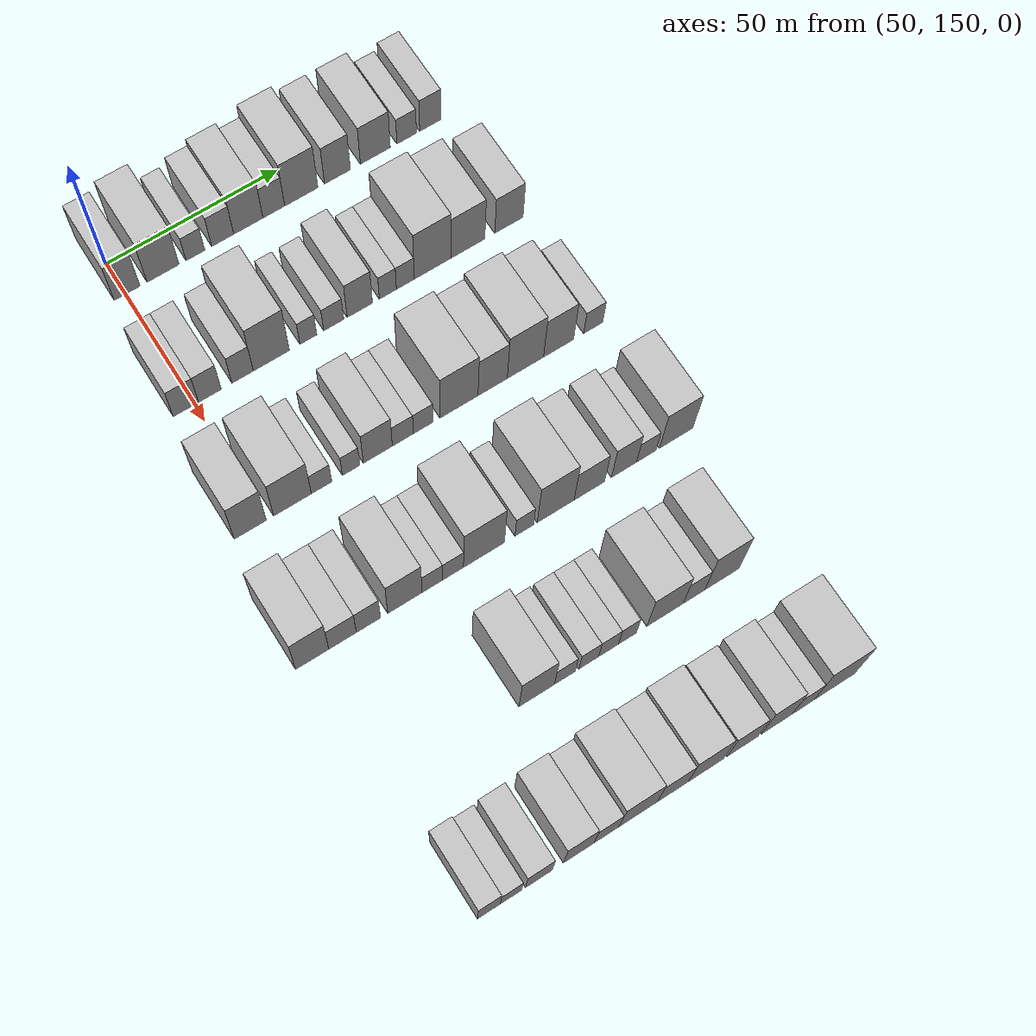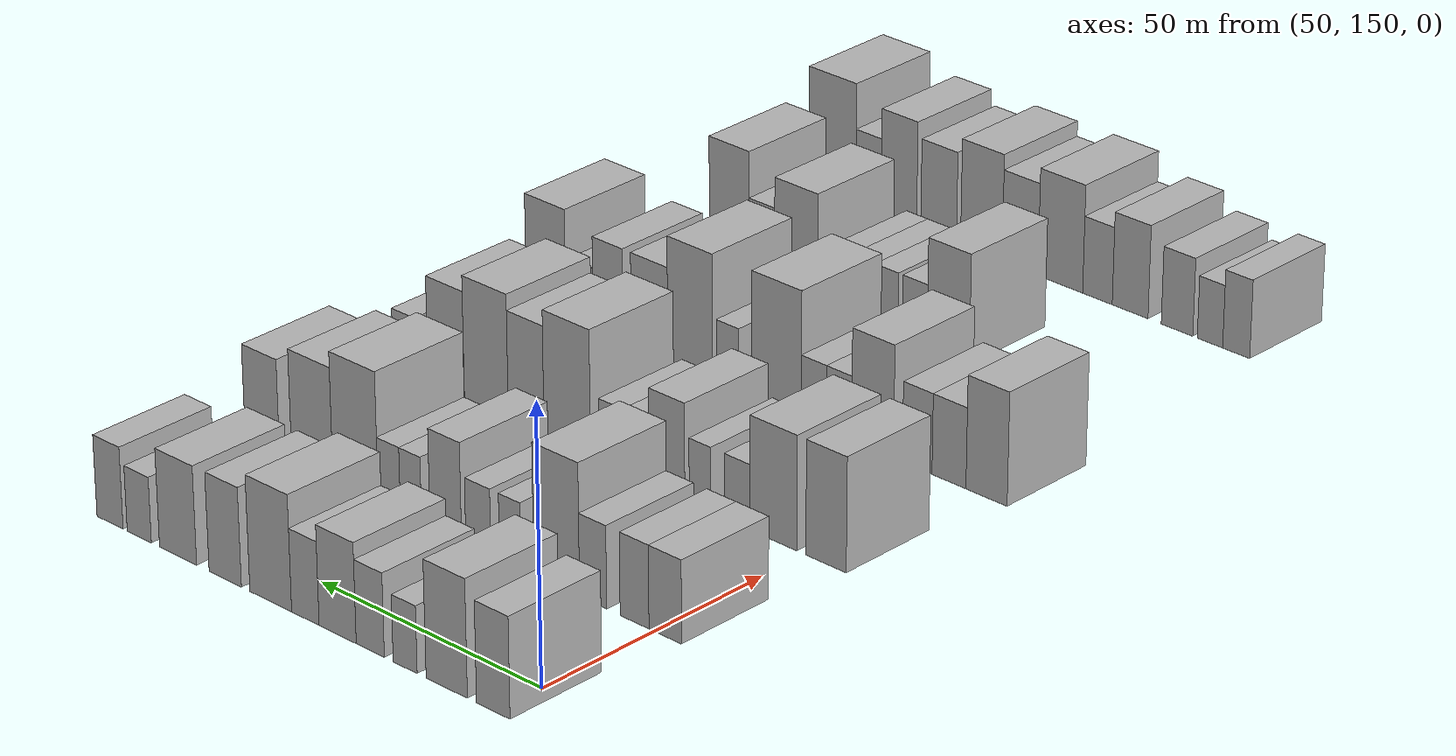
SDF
<sdf version="1.6">
 <world name="default">
  <model name="building_81">
   <static>1</static>
   <pose>50.0000 150.5352 0 0.000000 0.000000 0.000000</pose>
   <link name="link">
    <pose>0 0 9.00 0 0 0</pose>
    <collision name="collision"><geometry><box><size>20.0000 7.3557 18.0000</size></box></geometry></collision>
    <visual name="visual">
     <cast_shadows>0</cast_shadows>
     <geometry><box><size>20.0000 7.3557 18.0000</size></box></geometry>
     <material>
      <script>
       <uri>model://HANNAS_wall/materials/scripts</uri>
       <uri>model://HANNAS_wall/materials/textures</uri>
       <name>vrc/HANNAS_wall</name>
      </script>
     </material>
    </visual>
   </link>
  </model>
  <model name="building_82">
   <static>1</static>
   <pose>50.0000 160.8106 0 0.000000 0.000000 0.000000</pose>
   <link name="link">
    <pose>0 0 10.50 0 0 0</pose>
    <collision name="collision"><geometry><box><size>20.0000 9.1950 21.0000</size></box></geometry></collision>
    <visual name="visual">
     <cast_shadows>0</cast_shadows>
     <geometry><box><size>20.0000 9.1950 21.0000</size></box></geometry>
     <material>
      <script>
       <uri>model://HANNAS_wall/materials/scripts</uri>
       <uri>model://HANNAS_wall/materials/textures</uri>
       <name>vrc/HANNAS_wall</name>
      </script>
     </material>
    </visual>
   </link>
  </model>
  <model name="building_83">
   <static>1</static>
   <pose>50.0000 170.1138 0 0.000000 0.000000 0.000000</pose>
   <link name="link">
    <pose>0 0 6.00 0 0 0</pose>
    <collision name="collision"><geometry><box><size>20.0000 5.4114 12.0000</size></box></geometry></collision>
    <visual name="visual">
     <cast_shadows>0</cast_shadows>
     <geometry><box><size>20.0000 5.4114 12.0000</size></box></geometry>
     <material>
      <script>
       <uri>model://HANNAS_wall/materials/scripts</uri>
       <uri>model://HANNAS_wall/materials/textures</uri>
       <name>vrc/HANNAS_wall</name>
      </script>
     </material>
    </visual>
   </link>
  </model>
  <model name="building_84">
   <static>1</static>
   <pose>50.0000 178.0235 0 0.000000 0.000000 0.000000</pose>
   <link name="link">
    <pose>0 0 7.50 0 0 0</pose>
    <collision name="collision"><geometry><box><size>20.0000 6.4080 15.0000</size></box></geometry></collision>
    <visual name="visual">
     <cast_shadows>0</cast_shadows>
     <geometry><box><size>20.0000 6.4080 15.0000</size></box></geometry>
     <material>
      <script>
       <uri>model://HANNAS_wall/materials/scripts</uri>
       <uri>model://HANNAS_wall/materials/textures</uri>
       <name>vrc/HANNAS_wall</name>
      </script>
     </material>
    </visual>
   </link>
  </model>
  <model name="building_85">
   <static>1</static>
   <pose>50.0000 185.4973 0 0.000000 0.000000 0.000000</pose>
   <link name="link">
    <pose>0 0 9.00 0 0 0</pose>
    <collision name="collision"><geometry><box><size>20.0000 8.5397 18.0000</size></box></geometry></collision>
    <visual name="visual">
     <cast_shadows>0</cast_shadows>
     <geometry><box><size>20.0000 8.5397 18.0000</size></box></geometry>
     <material>
      <script>
       <uri>model://HANNAS_wall/materials/scripts</uri>
       <uri>model://HANNAS_wall/materials/textures</uri>
       <name>vrc/HANNAS_wall</name>
      </script>
     </material>
    </visual>
   </link>
  </model>
  <model name="building_86">
   <static>1</static>
   <pose>50.0000 192.9654 0 0.000000 0.000000 0.000000</pose>
   <link name="link">
    <pose>0 0 7.50 0 0 0</pose>
    <collision name="collision"><geometry><box><size>20.0000 6.3965 15.0000</size></box></geometry></collision>
    <visual name="visual">
     <cast_shadows>0</cast_shadows>
     <geometry><box><size>20.0000 6.3965 15.0000</size></box></geometry>
     <material>
      <script>
       <uri>model://HANNAS_wall/materials/scripts</uri>
       <uri>model://HANNAS_wall/materials/textures</uri>
       <name>vrc/HANNAS_wall</name>
      </script>
     </material>
    </visual>
   </link>
  </model>
  <model name="building_87">
   <static>1</static>
   <pose>50.0000 201.0719 0 0.000000 0.000000 0.000000</pose>
   <link name="link">
    <pose>0 0 10.50 0 0 0</pose>
    <collision name="collision"><geometry><box><size>20.0000 9.8165 21.0000</size></box></geometry></collision>
    <visual name="visual">
     <cast_shadows>0</cast_shadows>
     <geometry><box><size>20.0000 9.8165 21.0000</size></box></geometry>
     <material>
      <script>
       <uri>model://HANNAS_wall/materials/scripts</uri>
       <uri>model://HANNAS_wall/materials/textures</uri>
       <name>vrc/HANNAS_wall</name>
      </script>
     </material>
    </visual>
   </link>
  </model>
  <model name="building_88">
   <static>1</static>
   <pose>50.0000 211.8368 0 0.000000 0.000000 0.000000</pose>
   <link name="link">
    <pose>0 0 9.00 0 0 0</pose>
    <collision name="collision"><geometry><box><size>20.0000 7.7133 18.0000</size></box></geometry></collision>
    <visual name="visual">
     <cast_shadows>0</cast_shadows>
     <geometry><box><size>20.0000 7.7133 18.0000</size></box></geometry>
     <material>
      <script>
       <uri>model://HANNAS_wall/materials/scripts</uri>
       <uri>model://HANNAS_wall/materials/textures</uri>
       <name>vrc/HANNAS_wall</name>
      </script>
     </material>
    </visual>
   </link>
  </model>
  <model name="building_89">
   <static>1</static>
   <pose>50.0000 223.1848 0 0.000000 0.000000 0.000000</pose>
   <link name="link">
    <pose>0 0 9.00 0 0 0</pose>
    <collision name="collision"><geometry><box><size>20.0000 8.9827 18.0000</size></box></geometry></collision>
    <visual name="visual">
     <cast_shadows>0</cast_shadows>
     <geometry><box><size>20.0000 8.9827 18.0000</size></box></geometry>
     <material>
      <script>
       <uri>model://HANNAS_wall/materials/scripts</uri>
       <uri>model://HANNAS_wall/materials/textures</uri>
       <name>vrc/HANNAS_wall</name>
      </script>
     </material>
    </visual>
   </link>
  </model>
  <model name="building_90">
   <static>1</static>
   <pose>50.0000 232.6424 0 0.000000 0.000000 0.000000</pose>
   <link name="link">
    <pose>0 0 6.00 0 0 0</pose>
    <collision name="collision"><geometry><box><size>20.0000 5.9325 12.0000</size></box></geometry></collision>
    <visual name="visual">
     <cast_shadows>0</cast_shadows>
     <geometry><box><size>20.0000 5.9325 12.0000</size></box></geometry>
     <material>
      <script>
       <uri>model://HANNAS_wall/materials/scripts</uri>
       <uri>model://HANNAS_wall/materials/textures</uri>
       <name>vrc/HANNAS_wall</name>
      </script>
     </material>
    </visual>
   </link>
  </model>
  <model name="building_91">
   <static>1</static>
   <pose>50.0000 239.8371 0 0.000000 0.000000 0.000000</pose>
   <link name="link">
    <pose>0 0 7.50 0 0 0</pose>
    <collision name="collision"><geometry><box><size>20.0000 6.4569 15.0000</size></box></geometry></collision>
    <visual name="visual">
     <cast_shadows>0</cast_shadows>
     <geometry><box><size>20.0000 6.4569 15.0000</size></box></geometry>
     <material>
      <script>
       <uri>model://HANNAS_wall/materials/scripts</uri>
       <uri>model://HANNAS_wall/materials/textures</uri>
       <name>vrc/HANNAS_wall</name>
      </script>
     </material>
    </visual>
   </link>
  </model>
  <model name="building_209">
   <static>1</static>
   <pose>85.0000 147.5920 0 0.000000 0.000000 0.000000</pose>
   <link name="link">
    <pose>0 0 7.50 0 0 0</pose>
    <collision name="collision"><geometry><box><size>20.0000 7.1171 15.0000</size></box></geometry></collision>
    <visual name="visual">
     <cast_shadows>0</cast_shadows>
     <geometry><box><size>20.0000 7.1171 15.0000</size></box></geometry>
     <material>
      <script>
       <uri>model://HANNAS_wall/materials/scripts</uri>
       <uri>model://HANNAS_wall/materials/textures</uri>
       <name>vrc/HANNAS_wall</name>
      </script>
     </material>
    </visual>
   </link>
  </model>
  <model name="building_210">
   <static>1</static>
   <pose>85.0000 154.3354 0 0.000000 0.000000 0.000000</pose>
   <link name="link">
    <pose>0 0 7.50 0 0 0</pose>
    <collision name="collision"><geometry><box><size>20.0000 6.3697 15.0000</size></box></geometry></collision>
    <visual name="visual">
     <cast_shadows>0</cast_shadows>
     <geometry><box><size>20.0000 6.3697 15.0000</size></box></geometry>
     <material>
      <script>
       <uri>model://HANNAS_wall/materials/scripts</uri>
       <uri>model://HANNAS_wall/materials/textures</uri>
       <name>vrc/HANNAS_wall</name>
      </script>
     </material>
    </visual>
   </link>
  </model>
  <model name="building_211">
   <static>1</static>
   <pose>85.0000 163.5473 0 0.000000 0.000000 0.000000</pose>
   <link name="link">
    <pose>0 0 7.50 0 0 0</pose>
    <collision name="collision"><geometry><box><size>20.0000 6.0540 15.0000</size></box></geometry></collision>
    <visual name="visual">
     <cast_shadows>0</cast_shadows>
     <geometry><box><size>20.0000 6.0540 15.0000</size></box></geometry>
     <material>
      <script>
       <uri>model://HANNAS_wall/materials/scripts</uri>
       <uri>model://HANNAS_wall/materials/textures</uri>
       <name>vrc/HANNAS_wall</name>
      </script>
     </material>
    </visual>
   </link>
  </model>
  <model name="building_212">
   <static>1</static>
   <pose>85.0000 171.7288 0 0.000000 0.000000 0.000000</pose>
   <link name="link">
    <pose>0 0 12.00 0 0 0</pose>
    <collision name="collision"><geometry><box><size>20.0000 10.3090 24.0000</size></box></geometry></collision>
    <visual name="visual">
     <cast_shadows>0</cast_shadows>
     <geometry><box><size>20.0000 10.3090 24.0000</size></box></geometry>
     <material>
      <script>
       <uri>model://HANNAS_wall/materials/scripts</uri>
       <uri>model://HANNAS_wall/materials/textures</uri>
       <name>vrc/HANNAS_wall</name>
      </script>
     </material>
    </visual>
   </link>
  </model>
  <model name="building_213">
   <static>1</static>
   <pose>85.0000 182.3152 0 0.000000 0.000000 0.000000</pose>
   <link name="link">
    <pose>0 0 6.00 0 0 0</pose>
    <collision name="collision"><geometry><box><size>20.0000 4.8638 12.0000</size></box></geometry></collision>
    <visual name="visual">
     <cast_shadows>0</cast_shadows>
     <geometry><box><size>20.0000 4.8638 12.0000</size></box></geometry>
     <material>
      <script>
       <uri>model://HANNAS_wall/materials/scripts</uri>
       <uri>model://HANNAS_wall/materials/textures</uri>
       <name>vrc/HANNAS_wall</name>
      </script>
     </material>
    </visual>
   </link>
  </model>
  <model name="building_214">
   <static>1</static>
   <pose>85.0000 189.6433 0 0.000000 0.000000 0.000000</pose>
   <link name="link">
    <pose>0 0 6.00 0 0 0</pose>
    <collision name="collision"><geometry><box><size>20.0000 5.7923 12.0000</size></box></geometry></collision>
    <visual name="visual">
     <cast_shadows>0</cast_shadows>
     <geometry><box><size>20.0000 5.7923 12.0000</size></box></geometry>
     <material>
      <script>
       <uri>model://HANNAS_wall/materials/scripts</uri>
       <uri>model://HANNAS_wall/materials/textures</uri>
       <name>vrc/HANNAS_wall</name>
      </script>
     </material>
    </visual>
   </link>
  </model>
  <model name="building_215">
   <static>1</static>
   <pose>85.0000 197.2179 0 0.000000 0.000000 0.000000</pose>
   <link name="link">
    <pose>0 0 9.00 0 0 0</pose>
    <collision name="collision"><geometry><box><size>20.0000 7.3569 18.0000</size></box></geometry></collision>
    <visual name="visual">
     <cast_shadows>0</cast_shadows>
     <geometry><box><size>20.0000 7.3569 18.0000</size></box></geometry>
     <material>
      <script>
       <uri>model://HANNAS_wall/materials/scripts</uri>
       <uri>model://HANNAS_wall/materials/textures</uri>
       <name>vrc/HANNAS_wall</name>
      </script>
     </material>
    </visual>
   </link>
  </model>
  <model name="building_216">
   <static>1</static>
   <pose>85.0000 205.4001 0 0.000000 0.000000 0.000000</pose>
   <link name="link">
    <pose>0 0 6.00 0 0 0</pose>
    <collision name="collision"><geometry><box><size>20.0000 5.0075 12.0000</size></box></geometry></collision>
    <visual name="visual">
     <cast_shadows>0</cast_shadows>
     <geometry><box><size>20.0000 5.0075 12.0000</size></box></geometry>
     <material>
      <script>
       <uri>model://HANNAS_wall/materials/scripts</uri>
       <uri>model://HANNAS_wall/materials/textures</uri>
       <name>vrc/HANNAS_wall</name>
      </script>
     </material>
    </visual>
   </link>
  </model>
  <model name="building_217">
   <static>1</static>
   <pose>85.0000 210.5341 0 0.000000 0.000000 0.000000</pose>
   <link name="link">
    <pose>0 0 6.00 0 0 0</pose>
    <collision name="collision"><geometry><box><size>20.0000 5.2606 12.0000</size></box></geometry></collision>
    <visual name="visual">
     <cast_shadows>0</cast_shadows>
     <geometry><box><size>20.0000 5.2606 12.0000</size></box></geometry>
     <material>
      <script>
       <uri>model://HANNAS_wall/materials/scripts</uri>
       <uri>model://HANNAS_wall/materials/textures</uri>
       <name>vrc/HANNAS_wall</name>
      </script>
     </material>
    </visual>
   </link>
  </model>
  <model name="building_218">
   <static>1</static>
   <pose>85.0000 218.6100 0 0.000000 0.000000 0.000000</pose>
   <link name="link">
    <pose>0 0 12.00 0 0 0</pose>
    <collision name="collision"><geometry><box><size>20.0000 10.8912 24.0000</size></box></geometry></collision>
    <visual name="visual">
     <cast_shadows>0</cast_shadows>
     <geometry><box><size>20.0000 10.8912 24.0000</size></box></geometry>
     <material>
      <script>
       <uri>model://HANNAS_wall/materials/scripts</uri>
       <uri>model://HANNAS_wall/materials/textures</uri>
       <name>vrc/HANNAS_wall</name>
      </script>
     </material>
    </visual>
   </link>
  </model>
  <model name="building_219">
   <static>1</static>
   <pose>85.0000 229.0872 0 0.000000 0.000000 0.000000</pose>
   <link name="link">
    <pose>0 0 10.50 0 0 0</pose>
    <collision name="collision"><geometry><box><size>20.0000 10.0633 21.0000</size></box></geometry></collision>
    <visual name="visual">
     <cast_shadows>0</cast_shadows>
     <geometry><box><size>20.0000 10.0633 21.0000</size></box></geometry>
     <material>
      <script>
       <uri>model://HANNAS_wall/materials/scripts</uri>
       <uri>model://HANNAS_wall/materials/textures</uri>
       <name>vrc/HANNAS_wall</name>
      </script>
     </material>
    </visual>
   </link>
  </model>
  <model name="building_220">
   <static>1</static>
   <pose>85.0000 241.3633 0 0.000000 0.000000 0.000000</pose>
   <link name="link">
    <pose>0 0 9.00 0 0 0</pose>
    <collision name="collision"><geometry><box><size>20.0000 8.4889 18.0000</size></box></geometry></collision>
    <visual name="visual">
     <cast_shadows>0</cast_shadows>
     <geometry><box><size>20.0000 8.4889 18.0000</size></box></geometry>
     <material>
      <script>
       <uri>model://HANNAS_wall/materials/scripts</uri>
       <uri>model://HANNAS_wall/materials/textures</uri>
       <name>vrc/HANNAS_wall</name>
      </script>
     </material>
    </visual>
   </link>
  </model>
  <model name="building_336">
   <static>1</static>
   <pose>120.0000 145.3787 0 0.000000 0.000000 0.000000</pose>
   <link name="link">
    <pose>0 0 10.50 0 0 0</pose>
    <collision name="collision"><geometry><box><size>20.0000 8.8377 21.0000</size></box></geometry></collision>
    <visual name="visual">
     <cast_shadows>0</cast_shadows>
     <geometry><box><size>20.0000 8.8377 21.0000</size></box></geometry>
     <material>
      <script>
       <uri>model://HANNAS_wall/materials/scripts</uri>
       <uri>model://HANNAS_wall/materials/textures</uri>
       <name>vrc/HANNAS_wall</name>
      </script>
     </material>
    </visual>
   </link>
  </model>
  <model name="building_337">
   <static>1</static>
   <pose>120.0000 157.0378 0 0.000000 0.000000 0.000000</pose>
   <link name="link">
    <pose>0 0 10.50 0 0 0</pose>
    <collision name="collision"><geometry><box><size>20.0000 10.4804 21.0000</size></box></geometry></collision>
    <visual name="visual">
     <cast_shadows>0</cast_shadows>
     <geometry><box><size>20.0000 10.4804 21.0000</size></box></geometry>
     <material>
      <script>
       <uri>model://HANNAS_wall/materials/scripts</uri>
       <uri>model://HANNAS_wall/materials/textures</uri>
       <name>vrc/HANNAS_wall</name>
      </script>
     </material>
    </visual>
   </link>
  </model>
  <model name="building_338">
   <static>1</static>
   <pose>120.0000 165.1347 0 0.000000 0.000000 0.000000</pose>
   <link name="link">
    <pose>0 0 6.00 0 0 0</pose>
    <collision name="collision"><geometry><box><size>20.0000 5.7133 12.0000</size></box></geometry></collision>
    <visual name="visual">
     <cast_shadows>0</cast_shadows>
     <geometry><box><size>20.0000 5.7133 12.0000</size></box></geometry>
     <material>
      <script>
       <uri>model://HANNAS_wall/materials/scripts</uri>
       <uri>model://HANNAS_wall/materials/textures</uri>
       <name>vrc/HANNAS_wall</name>
      </script>
     </material>
    </visual>
   </link>
  </model>
  <model name="building_339">
   <static>1</static>
   <pose>120.0000 173.4476 0 0.000000 0.000000 0.000000</pose>
   <link name="link">
    <pose>0 0 6.00 0 0 0</pose>
    <collision name="collision"><geometry><box><size>20.0000 4.9125 12.0000</size></box></geometry></collision>
    <visual name="visual">
     <cast_shadows>0</cast_shadows>
     <geometry><box><size>20.0000 4.9125 12.0000</size></box></geometry>
     <material>
      <script>
       <uri>model://HANNAS_wall/materials/scripts</uri>
       <uri>model://HANNAS_wall/materials/textures</uri>
       <name>vrc/HANNAS_wall</name>
      </script>
     </material>
    </visual>
   </link>
  </model>
  <model name="building_340">
   <static>1</static>
   <pose>120.0000 181.0003 0 0.000000 0.000000 0.000000</pose>
   <link name="link">
    <pose>0 0 9.00 0 0 0</pose>
    <collision name="collision"><geometry><box><size>20.0000 8.1930 18.0000</size></box></geometry></collision>
    <visual name="visual">
     <cast_shadows>0</cast_shadows>
     <geometry><box><size>20.0000 8.1930 18.0000</size></box></geometry>
     <material>
      <script>
       <uri>model://HANNAS_wall/materials/scripts</uri>
       <uri>model://HANNAS_wall/materials/textures</uri>
       <name>vrc/HANNAS_wall</name>
      </script>
     </material>
    </visual>
   </link>
  </model>
  <model name="building_341">
   <static>1</static>
   <pose>120.0000 188.0952 0 0.000000 0.000000 0.000000</pose>
   <link name="link">
    <pose>0 0 6.00 0 0 0</pose>
    <collision name="collision"><geometry><box><size>20.0000 5.9968 12.0000</size></box></geometry></collision>
    <visual name="visual">
     <cast_shadows>0</cast_shadows>
     <geometry><box><size>20.0000 5.9968 12.0000</size></box></geometry>
     <material>
      <script>
       <uri>model://HANNAS_wall/materials/scripts</uri>
       <uri>model://HANNAS_wall/materials/textures</uri>
       <name>vrc/HANNAS_wall</name>
      </script>
     </material>
    </visual>
   </link>
  </model>
  <model name="building_342">
   <static>1</static>
   <pose>120.0000 193.9036 0 0.000000 0.000000 0.000000</pose>
   <link name="link">
    <pose>0 0 6.00 0 0 0</pose>
    <collision name="collision"><geometry><box><size>20.0000 5.6198 12.0000</size></box></geometry></collision>
    <visual name="visual">
     <cast_shadows>0</cast_shadows>
     <geometry><box><size>20.0000 5.6198 12.0000</size></box></geometry>
     <material>
      <script>
       <uri>model://HANNAS_wall/materials/scripts</uri>
       <uri>model://HANNAS_wall/materials/textures</uri>
       <name>vrc/HANNAS_wall</name>
      </script>
     </material>
    </visual>
   </link>
  </model>
  <model name="building_343">
   <static>1</static>
   <pose>120.0000 204.1965 0 0.000000 0.000000 0.000000</pose>
   <link name="link">
    <pose>0 0 12.00 0 0 0</pose>
    <collision name="collision"><geometry><box><size>20.0000 10.9661 24.0000</size></box></geometry></collision>
    <visual name="visual">
     <cast_shadows>0</cast_shadows>
     <geometry><box><size>20.0000 10.9661 24.0000</size></box></geometry>
     <material>
      <script>
       <uri>model://HANNAS_wall/materials/scripts</uri>
       <uri>model://HANNAS_wall/materials/textures</uri>
       <name>vrc/HANNAS_wall</name>
      </script>
     </material>
    </visual>
   </link>
  </model>
  <model name="building_344">
   <static>1</static>
   <pose>120.0000 213.9472 0 0.000000 0.000000 0.000000</pose>
   <link name="link">
    <pose>0 0 10.50 0 0 0</pose>
    <collision name="collision"><geometry><box><size>20.0000 8.5353 21.0000</size></box></geometry></collision>
    <visual name="visual">
     <cast_shadows>0</cast_shadows>
     <geometry><box><size>20.0000 8.5353 21.0000</size></box></geometry>
     <material>
      <script>
       <uri>model://HANNAS_wall/materials/scripts</uri>
       <uri>model://HANNAS_wall/materials/textures</uri>
       <name>vrc/HANNAS_wall</name>
      </script>
     </material>
    </visual>
   </link>
  </model>
  <model name="building_345">
   <static>1</static>
   <pose>120.0000 223.5296 0 0.000000 0.000000 0.000000</pose>
   <link name="link">
    <pose>0 0 12.00 0 0 0</pose>
    <collision name="collision"><geometry><box><size>20.0000 10.6295 24.0000</size></box></geometry></collision>
    <visual name="visual">
     <cast_shadows>0</cast_shadows>
     <geometry><box><size>20.0000 10.6295 24.0000</size></box></geometry>
     <material>
      <script>
       <uri>model://HANNAS_wall/materials/scripts</uri>
       <uri>model://HANNAS_wall/materials/textures</uri>
       <name>vrc/HANNAS_wall</name>
      </script>
     </material>
    </visual>
   </link>
  </model>
  <model name="building_346">
   <static>1</static>
   <pose>120.0000 233.2920 0 0.000000 0.000000 0.000000</pose>
   <link name="link">
    <pose>0 0 10.50 0 0 0</pose>
    <collision name="collision"><geometry><box><size>20.0000 8.8952 21.0000</size></box></geometry></collision>
    <visual name="visual">
     <cast_shadows>0</cast_shadows>
     <geometry><box><size>20.0000 8.8952 21.0000</size></box></geometry>
     <material>
      <script>
       <uri>model://HANNAS_wall/materials/scripts</uri>
       <uri>model://HANNAS_wall/materials/textures</uri>
       <name>vrc/HANNAS_wall</name>
      </script>
     </material>
    </visual>
   </link>
  </model>
  <model name="building_347">
   <static>1</static>
   <pose>120.0000 243.5749 0 0.000000 0.000000 0.000000</pose>
   <link name="link">
    <pose>0 0 6.00 0 0 0</pose>
    <collision name="collision"><geometry><box><size>20.0000 5.6707 12.0000</size></box></geometry></collision>
    <visual name="visual">
     <cast_shadows>0</cast_shadows>
     <geometry><box><size>20.0000 5.6707 12.0000</size></box></geometry>
     <material>
      <script>
       <uri>model://HANNAS_wall/materials/scripts</uri>
       <uri>model://HANNAS_wall/materials/textures</uri>
       <name>vrc/HANNAS_wall</name>
      </script>
     </material>
    </visual>
   </link>
  </model>
  <model name="building_465">
   <static>1</static>
   <pose>155.0000 141.6316 0 0.000000 0.000000 0.000000</pose>
   <link name="link">
    <pose>0 0 10.50 0 0 0</pose>
    <collision name="collision"><geometry><box><size>20.0000 8.9979 21.0000</size></box></geometry></collision>
    <visual name="visual">
     <cast_shadows>0</cast_shadows>
     <geometry><box><size>20.0000 8.9979 21.0000</size></box></geometry>
     <material>
      <script>
       <uri>model://HANNAS_wall/materials/scripts</uri>
       <uri>model://HANNAS_wall/materials/textures</uri>
       <name>vrc/HANNAS_wall</name>
      </script>
     </material>
    </visual>
   </link>
  </model>
  <model name="building_466">
   <static>1</static>
   <pose>155.0000 149.8803 0 0.000000 0.000000 0.000000</pose>
   <link name="link">
    <pose>0 0 7.50 0 0 0</pose>
    <collision name="collision"><geometry><box><size>20.0000 7.4995 15.0000</size></box></geometry></collision>
    <visual name="visual">
     <cast_shadows>0</cast_shadows>
     <geometry><box><size>20.0000 7.4995 15.0000</size></box></geometry>
     <material>
      <script>
       <uri>model://HANNAS_wall/materials/scripts</uri>
       <uri>model://HANNAS_wall/materials/textures</uri>
       <name>vrc/HANNAS_wall</name>
      </script>
     </material>
    </visual>
   </link>
  </model>
  <model name="building_467">
   <static>1</static>
   <pose>155.0000 156.9238 0 0.000000 0.000000 0.000000</pose>
   <link name="link">
    <pose>0 0 7.50 0 0 0</pose>
    <collision name="collision"><geometry><box><size>20.0000 6.5875 15.0000</size></box></geometry></collision>
    <visual name="visual">
     <cast_shadows>0</cast_shadows>
     <geometry><box><size>20.0000 6.5875 15.0000</size></box></geometry>
     <material>
      <script>
       <uri>model://HANNAS_wall/materials/scripts</uri>
       <uri>model://HANNAS_wall/materials/textures</uri>
       <name>vrc/HANNAS_wall</name>
      </script>
     </material>
    </visual>
   </link>
  </model>
  <model name="building_468">
   <static>1</static>
   <pose>155.0000 166.9493 0 0.000000 0.000000 0.000000</pose>
   <link name="link">
    <pose>0 0 10.50 0 0 0</pose>
    <collision name="collision"><geometry><box><size>20.0000 9.4636 21.0000</size></box></geometry></collision>
    <visual name="visual">
     <cast_shadows>0</cast_shadows>
     <geometry><box><size>20.0000 9.4636 21.0000</size></box></geometry>
     <material>
      <script>
       <uri>model://HANNAS_wall/materials/scripts</uri>
       <uri>model://HANNAS_wall/materials/textures</uri>
       <name>vrc/HANNAS_wall</name>
      </script>
     </material>
    </visual>
   </link>
  </model>
  <model name="building_469">
   <static>1</static>
   <pose>155.0000 174.5649 0 0.000000 0.000000 0.000000</pose>
   <link name="link">
    <pose>0 0 6.00 0 0 0</pose>
    <collision name="collision"><geometry><box><size>20.0000 5.7677 12.0000</size></box></geometry></collision>
    <visual name="visual">
     <cast_shadows>0</cast_shadows>
     <geometry><box><size>20.0000 5.7677 12.0000</size></box></geometry>
     <material>
      <script>
       <uri>model://HANNAS_wall/materials/scripts</uri>
       <uri>model://HANNAS_wall/materials/textures</uri>
       <name>vrc/HANNAS_wall</name>
      </script>
     </material>
    </visual>
   </link>
  </model>
  <model name="building_470">
   <static>1</static>
   <pose>155.0000 180.3357 0 0.000000 0.000000 0.000000</pose>
   <link name="link">
    <pose>0 0 6.00 0 0 0</pose>
    <collision name="collision"><geometry><box><size>20.0000 5.7738 12.0000</size></box></geometry></collision>
    <visual name="visual">
     <cast_shadows>0</cast_shadows>
     <geometry><box><size>20.0000 5.7738 12.0000</size></box></geometry>
     <material>
      <script>
       <uri>model://HANNAS_wall/materials/scripts</uri>
       <uri>model://HANNAS_wall/materials/textures</uri>
       <name>vrc/HANNAS_wall</name>
      </script>
     </material>
    </visual>
   </link>
  </model>
  <model name="building_471">
   <static>1</static>
   <pose>155.0000 188.9792 0 0.000000 0.000000 0.000000</pose>
   <link name="link">
    <pose>0 0 12.00 0 0 0</pose>
    <collision name="collision"><geometry><box><size>20.0000 11.5132 24.0000</size></box></geometry></collision>
    <visual name="visual">
     <cast_shadows>0</cast_shadows>
     <geometry><box><size>20.0000 11.5132 24.0000</size></box></geometry>
     <material>
      <script>
       <uri>model://HANNAS_wall/materials/scripts</uri>
       <uri>model://HANNAS_wall/materials/textures</uri>
       <name>vrc/HANNAS_wall</name>
      </script>
     </material>
    </visual>
   </link>
  </model>
  <model name="building_472">
   <static>1</static>
   <pose>155.0000 200.3763 0 0.000000 0.000000 0.000000</pose>
   <link name="link">
    <pose>0 0 6.00 0 0 0</pose>
    <collision name="collision"><geometry><box><size>20.0000 5.2809 12.0000</size></box></geometry></collision>
    <visual name="visual">
     <cast_shadows>0</cast_shadows>
     <geometry><box><size>20.0000 5.2809 12.0000</size></box></geometry>
     <material>
      <script>
       <uri>model://HANNAS_wall/materials/scripts</uri>
       <uri>model://HANNAS_wall/materials/textures</uri>
       <name>vrc/HANNAS_wall</name>
      </script>
     </material>
    </visual>
   </link>
  </model>
  <model name="building_473">
   <static>1</static>
   <pose>155.0000 209.3067 0 0.000000 0.000000 0.000000</pose>
   <link name="link">
    <pose>0 0 12.00 0 0 0</pose>
    <collision name="collision"><geometry><box><size>20.0000 10.5800 24.0000</size></box></geometry></collision>
    <visual name="visual">
     <cast_shadows>0</cast_shadows>
     <geometry><box><size>20.0000 10.5800 24.0000</size></box></geometry>
     <material>
      <script>
       <uri>model://HANNAS_wall/materials/scripts</uri>
       <uri>model://HANNAS_wall/materials/textures</uri>
       <name>vrc/HANNAS_wall</name>
      </script>
     </material>
    </visual>
   </link>
  </model>
  <model name="building_474">
   <static>1</static>
   <pose>155.0000 218.9980 0 0.000000 0.000000 0.000000</pose>
   <link name="link">
    <pose>0 0 9.00 0 0 0</pose>
    <collision name="collision"><geometry><box><size>20.0000 8.8026 18.0000</size></box></geometry></collision>
    <visual name="visual">
     <cast_shadows>0</cast_shadows>
     <geometry><box><size>20.0000 8.8026 18.0000</size></box></geometry>
     <material>
      <script>
       <uri>model://HANNAS_wall/materials/scripts</uri>
       <uri>model://HANNAS_wall/materials/textures</uri>
       <name>vrc/HANNAS_wall</name>
      </script>
     </material>
    </visual>
   </link>
  </model>
  <model name="building_475">
   <static>1</static>
   <pose>155.0000 229.0469 0 0.000000 0.000000 0.000000</pose>
   <link name="link">
    <pose>0 0 9.00 0 0 0</pose>
    <collision name="collision"><geometry><box><size>20.0000 7.2950 18.0000</size></box></geometry></collision>
    <visual name="visual">
     <cast_shadows>0</cast_shadows>
     <geometry><box><size>20.0000 7.2950 18.0000</size></box></geometry>
     <material>
      <script>
       <uri>model://HANNAS_wall/materials/scripts</uri>
       <uri>model://HANNAS_wall/materials/textures</uri>
       <name>vrc/HANNAS_wall</name>
      </script>
     </material>
    </visual>
   </link>
  </model>
  <model name="building_476">
   <static>1</static>
   <pose>155.0000 235.5472 0 0.000000 0.000000 0.000000</pose>
   <link name="link">
    <pose>0 0 6.00 0 0 0</pose>
    <collision name="collision"><geometry><box><size>20.0000 5.7056 12.0000</size></box></geometry></collision>
    <visual name="visual">
     <cast_shadows>0</cast_shadows>
     <geometry><box><size>20.0000 5.7056 12.0000</size></box></geometry>
     <material>
      <script>
       <uri>model://HANNAS_wall/materials/scripts</uri>
       <uri>model://HANNAS_wall/materials/textures</uri>
       <name>vrc/HANNAS_wall</name>
      </script>
     </material>
    </visual>
   </link>
  </model>
  <model name="building_477">
   <static>1</static>
   <pose>155.0000 244.3221 0 0.000000 0.000000 0.000000</pose>
   <link name="link">
    <pose>0 0 10.50 0 0 0</pose>
    <collision name="collision"><geometry><box><size>20.0000 9.8443 21.0000</size></box></geometry></collision>
    <visual name="visual">
     <cast_shadows>0</cast_shadows>
     <geometry><box><size>20.0000 9.8443 21.0000</size></box></geometry>
     <material>
      <script>
       <uri>model://HANNAS_wall/materials/scripts</uri>
       <uri>model://HANNAS_wall/materials/textures</uri>
       <name>vrc/HANNAS_wall</name>
      </script>
     </material>
    </visual>
   </link>
  </model>
  <model name="building_582">
   <static>1</static>
   <pose>190.0000 180.9813 0 0.000000 0.000000 0.000000</pose>
   <link name="link">
    <pose>0 0 10.50 0 0 0</pose>
    <collision name="collision"><geometry><box><size>20.0000 9.7643 21.0000</size></box></geometry></collision>
    <visual name="visual">
     <cast_shadows>0</cast_shadows>
     <geometry><box><size>20.0000 9.7643 21.0000</size></box></geometry>
     <material>
      <script>
       <uri>model://HANNAS_wall/materials/scripts</uri>
       <uri>model://HANNAS_wall/materials/textures</uri>
       <name>vrc/HANNAS_wall</name>
      </script>
     </material>
    </visual>
   </link>
  </model>
  <model name="building_583">
   <static>1</static>
   <pose>190.0000 188.7518 0 0.000000 0.000000 0.000000</pose>
   <link name="link">
    <pose>0 0 6.00 0 0 0</pose>
    <collision name="collision"><geometry><box><size>20.0000 5.7767 12.0000</size></box></geometry></collision>
    <visual name="visual">
     <cast_shadows>0</cast_shadows>
     <geometry><box><size>20.0000 5.7767 12.0000</size></box></geometry>
     <material>
      <script>
       <uri>model://HANNAS_wall/materials/scripts</uri>
       <uri>model://HANNAS_wall/materials/textures</uri>
       <name>vrc/HANNAS_wall</name>
      </script>
     </material>
    </visual>
   </link>
  </model>
  <model name="building_584">
   <static>1</static>
   <pose>190.0000 195.3918 0 0.000000 0.000000 0.000000</pose>
   <link name="link">
    <pose>0 0 6.00 0 0 0</pose>
    <collision name="collision"><geometry><box><size>20.0000 5.5032 12.0000</size></box></geometry></collision>
    <visual name="visual">
     <cast_shadows>0</cast_shadows>
     <geometry><box><size>20.0000 5.5032 12.0000</size></box></geometry>
     <material>
      <script>
       <uri>model://HANNAS_wall/materials/scripts</uri>
       <uri>model://HANNAS_wall/materials/textures</uri>
       <name>vrc/HANNAS_wall</name>
      </script>
     </material>
    </visual>
   </link>
  </model>
  <model name="building_585">
   <static>1</static>
   <pose>190.0000 200.9310 0 0.000000 0.000000 0.000000</pose>
   <link name="link">
    <pose>0 0 6.00 0 0 0</pose>
    <collision name="collision"><geometry><box><size>20.0000 5.5753 12.0000</size></box></geometry></collision>
    <visual name="visual">
     <cast_shadows>0</cast_shadows>
     <geometry><box><size>20.0000 5.5753 12.0000</size></box></geometry>
     <material>
      <script>
       <uri>model://HANNAS_wall/materials/scripts</uri>
       <uri>model://HANNAS_wall/materials/textures</uri>
       <name>vrc/HANNAS_wall</name>
      </script>
     </material>
    </visual>
   </link>
  </model>
  <model name="building_586">
   <static>1</static>
   <pose>190.0000 206.2353 0 0.000000 0.000000 0.000000</pose>
   <link name="link">
    <pose>0 0 6.00 0 0 0</pose>
    <collision name="collision"><geometry><box><size>20.0000 5.0333 12.0000</size></box></geometry></collision>
    <visual name="visual">
     <cast_shadows>0</cast_shadows>
     <geometry><box><size>20.0000 5.0333 12.0000</size></box></geometry>
     <material>
      <script>
       <uri>model://HANNAS_wall/materials/scripts</uri>
       <uri>model://HANNAS_wall/materials/textures</uri>
       <name>vrc/HANNAS_wall</name>
      </script>
     </material>
    </visual>
   </link>
  </model>
  <model name="building_587">
   <static>1</static>
   <pose>190.0000 216.9036 0 0.000000 0.000000 0.000000</pose>
   <link name="link">
    <pose>0 0 10.50 0 0 0</pose>
    <collision name="collision"><geometry><box><size>20.0000 10.3034 21.0000</size></box></geometry></collision>
    <visual name="visual">
     <cast_shadows>0</cast_shadows>
     <geometry><box><size>20.0000 10.3034 21.0000</size></box></geometry>
     <material>
      <script>
       <uri>model://HANNAS_wall/materials/scripts</uri>
       <uri>model://HANNAS_wall/materials/textures</uri>
       <name>vrc/HANNAS_wall</name>
      </script>
     </material>
    </visual>
   </link>
  </model>
  <model name="building_588">
   <static>1</static>
   <pose>190.0000 225.1435 0 0.000000 0.000000 0.000000</pose>
   <link name="link">
    <pose>0 0 7.50 0 0 0</pose>
    <collision name="collision"><geometry><box><size>20.0000 6.1764 15.0000</size></box></geometry></collision>
    <visual name="visual">
     <cast_shadows>0</cast_shadows>
     <geometry><box><size>20.0000 6.1764 15.0000</size></box></geometry>
     <material>
      <script>
       <uri>model://HANNAS_wall/materials/scripts</uri>
       <uri>model://HANNAS_wall/materials/textures</uri>
       <name>vrc/HANNAS_wall</name>
      </script>
     </material>
    </visual>
   </link>
  </model>
  <model name="building_589">
   <static>1</static>
   <pose>190.0000 233.1160 0 0.000000 0.000000 0.000000</pose>
   <link name="link">
    <pose>0 0 12.00 0 0 0</pose>
    <collision name="collision"><geometry><box><size>20.0000 9.7685 24.0000</size></box></geometry></collision>
    <visual name="visual">
     <cast_shadows>0</cast_shadows>
     <geometry><box><size>20.0000 9.7685 24.0000</size></box></geometry>
     <material>
      <script>
       <uri>model://HANNAS_wall/materials/scripts</uri>
       <uri>model://HANNAS_wall/materials/textures</uri>
       <name>vrc/HANNAS_wall</name>
      </script>
     </material>
    </visual>
   </link>
  </model>
  <model name="building_712">
   <static>1</static>
   <pose>225.0000 145.3956 0 0.000000 0.000000 0.000000</pose>
   <link name="link">
    <pose>0 0 7.50 0 0 0</pose>
    <collision name="collision"><geometry><box><size>20.0000 6.0083 15.0000</size></box></geometry></collision>
    <visual name="visual">
     <cast_shadows>0</cast_shadows>
     <geometry><box><size>20.0000 6.0083 15.0000</size></box></geometry>
     <material>
      <script>
       <uri>model://HANNAS_wall/materials/scripts</uri>
       <uri>model://HANNAS_wall/materials/textures</uri>
       <name>vrc/HANNAS_wall</name>
      </script>
     </material>
    </visual>
   </link>
  </model>
  <model name="building_713">
   <static>1</static>
   <pose>225.0000 151.2271 0 0.000000 0.000000 0.000000</pose>
   <link name="link">
    <pose>0 0 6.00 0 0 0</pose>
    <collision name="collision"><geometry><box><size>20.0000 5.6548 12.0000</size></box></geometry></collision>
    <visual name="visual">
     <cast_shadows>0</cast_shadows>
     <geometry><box><size>20.0000 5.6548 12.0000</size></box></geometry>
     <material>
      <script>
       <uri>model://HANNAS_wall/materials/scripts</uri>
       <uri>model://HANNAS_wall/materials/textures</uri>
       <name>vrc/HANNAS_wall</name>
      </script>
     </material>
    </visual>
   </link>
  </model>
  <model name="building_714">
   <static>1</static>
   <pose>225.0000 158.6138 0 0.000000 0.000000 0.000000</pose>
   <link name="link">
    <pose>0 0 7.50 0 0 0</pose>
    <collision name="collision"><geometry><box><size>20.0000 7.1186 15.0000</size></box></geometry></collision>
    <visual name="visual">
     <cast_shadows>0</cast_shadows>
     <geometry><box><size>20.0000 7.1186 15.0000</size></box></geometry>
     <material>
      <script>
       <uri>model://HANNAS_wall/materials/scripts</uri>
       <uri>model://HANNAS_wall/materials/textures</uri>
       <name>vrc/HANNAS_wall</name>
      </script>
     </material>
    </visual>
   </link>
  </model>
  <model name="building_715">
   <static>1</static>
   <pose>225.0000 169.2589 0 0.000000 0.000000 0.000000</pose>
   <link name="link">
    <pose>0 0 9.00 0 0 0</pose>
    <collision name="collision"><geometry><box><size>20.0000 8.1716 18.0000</size></box></geometry></collision>
    <visual name="visual">
     <cast_shadows>0</cast_shadows>
     <geometry><box><size>20.0000 8.1716 18.0000</size></box></geometry>
     <material>
      <script>
       <uri>model://HANNAS_wall/materials/scripts</uri>
       <uri>model://HANNAS_wall/materials/textures</uri>
       <name>vrc/HANNAS_wall</name>
      </script>
     </material>
    </visual>
   </link>
  </model>
  <model name="building_716">
   <static>1</static>
   <pose>225.0000 176.7509 0 0.000000 0.000000 0.000000</pose>
   <link name="link">
    <pose>0 0 7.50 0 0 0</pose>
    <collision name="collision"><geometry><box><size>20.0000 6.8123 15.0000</size></box></geometry></collision>
    <visual name="visual">
     <cast_shadows>0</cast_shadows>
     <geometry><box><size>20.0000 6.8123 15.0000</size></box></geometry>
     <material>
      <script>
       <uri>model://HANNAS_wall/materials/scripts</uri>
       <uri>model://HANNAS_wall/materials/textures</uri>
       <name>vrc/HANNAS_wall</name>
      </script>
     </material>
    </visual>
   </link>
  </model>
  <model name="building_717">
   <static>1</static>
   <pose>225.0000 185.3620 0 0.000000 0.000000 0.000000</pose>
   <link name="link">
    <pose>0 0 10.50 0 0 0</pose>
    <collision name="collision"><geometry><box><size>20.0000 10.4100 21.0000</size></box></geometry></collision>
    <visual name="visual">
     <cast_shadows>0</cast_shadows>
     <geometry><box><size>20.0000 10.4100 21.0000</size></box></geometry>
     <material>
      <script>
       <uri>model://HANNAS_wall/materials/scripts</uri>
       <uri>model://HANNAS_wall/materials/textures</uri>
       <name>vrc/HANNAS_wall</name>
      </script>
     </material>
    </visual>
   </link>
  </model>
  <model name="building_718">
   <static>1</static>
   <pose>225.0000 194.7922 0 0.000000 0.000000 0.000000</pose>
   <link name="link">
    <pose>0 0 9.00 0 0 0</pose>
    <collision name="collision"><geometry><box><size>20.0000 8.4504 18.0000</size></box></geometry></collision>
    <visual name="visual">
     <cast_shadows>0</cast_shadows>
     <geometry><box><size>20.0000 8.4504 18.0000</size></box></geometry>
     <material>
      <script>
       <uri>model://HANNAS_wall/materials/scripts</uri>
       <uri>model://HANNAS_wall/materials/textures</uri>
       <name>vrc/HANNAS_wall</name>
      </script>
     </material>
    </visual>
   </link>
  </model>
  <model name="building_719">
   <static>1</static>
   <pose>225.0000 203.9686 0 0.000000 0.000000 0.000000</pose>
   <link name="link">
    <pose>0 0 10.50 0 0 0</pose>
    <collision name="collision"><geometry><box><size>20.0000 9.9022 21.0000</size></box></geometry></collision>
    <visual name="visual">
     <cast_shadows>0</cast_shadows>
     <geometry><box><size>20.0000 9.9022 21.0000</size></box></geometry>
     <material>
      <script>
       <uri>model://HANNAS_wall/materials/scripts</uri>
       <uri>model://HANNAS_wall/materials/textures</uri>
       <name>vrc/HANNAS_wall</name>
      </script>
     </material>
    </visual>
   </link>
  </model>
  <model name="building_720">
   <static>1</static>
   <pose>225.0000 214.2218 0 0.000000 0.000000 0.000000</pose>
   <link name="link">
    <pose>0 0 9.00 0 0 0</pose>
    <collision name="collision"><geometry><box><size>20.0000 8.6042 18.0000</size></box></geometry></collision>
    <visual name="visual">
     <cast_shadows>0</cast_shadows>
     <geometry><box><size>20.0000 8.6042 18.0000</size></box></geometry>
     <material>
      <script>
       <uri>model://HANNAS_wall/materials/scripts</uri>
       <uri>model://HANNAS_wall/materials/textures</uri>
       <name>vrc/HANNAS_wall</name>
      </script>
     </material>
    </visual>
   </link>
  </model>
  <model name="building_721">
   <static>1</static>
   <pose>225.0000 223.8645 0 0.000000 0.000000 0.000000</pose>
   <link name="link">
    <pose>0 0 10.50 0 0 0</pose>
    <collision name="collision"><geometry><box><size>20.0000 8.6813 21.0000</size></box></geometry></collision>
    <visual name="visual">
     <cast_shadows>0</cast_shadows>
     <geometry><box><size>20.0000 8.6813 21.0000</size></box></geometry>
     <material>
      <script>
       <uri>model://HANNAS_wall/materials/scripts</uri>
       <uri>model://HANNAS_wall/materials/textures</uri>
       <name>vrc/HANNAS_wall</name>
      </script>
     </material>
    </visual>
   </link>
  </model>
  <model name="building_722">
   <static>1</static>
   <pose>225.0000 231.3243 0 0.000000 0.000000 0.000000</pose>
   <link name="link">
    <pose>0 0 7.50 0 0 0</pose>
    <collision name="collision"><geometry><box><size>20.0000 6.2383 15.0000</size></box></geometry></collision>
    <visual name="visual">
     <cast_shadows>0</cast_shadows>
     <geometry><box><size>20.0000 6.2383 15.0000</size></box></geometry>
     <material>
      <script>
       <uri>model://HANNAS_wall/materials/scripts</uri>
       <uri>model://HANNAS_wall/materials/textures</uri>
       <name>vrc/HANNAS_wall</name>
      </script>
     </material>
    </visual>
   </link>
  </model>
  <model name="building_723">
   <static>1</static>
   <pose>225.0000 240.2466 0 0.000000 0.000000 0.000000</pose>
   <link name="link">
    <pose>0 0 12.00 0 0 0</pose>
    <collision name="collision"><geometry><box><size>20.0000 11.6062 24.0000</size></box></geometry></collision>
    <visual name="visual">
     <cast_shadows>0</cast_shadows>
     <geometry><box><size>20.0000 11.6062 24.0000</size></box></geometry>
     <material>
      <script>
       <uri>model://HANNAS_wall/materials/scripts</uri>
       <uri>model://HANNAS_wall/materials/textures</uri>
       <name>vrc/HANNAS_wall</name>
      </script>
     </material>
    </visual>
   </link>
  </model>
 </world>
</sdf>
